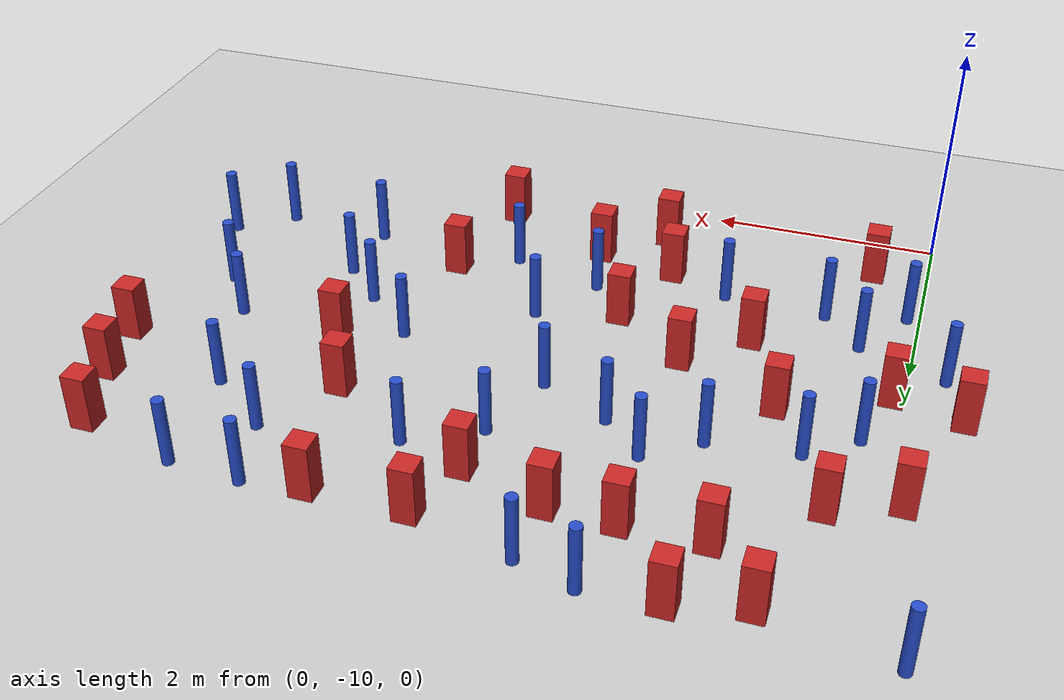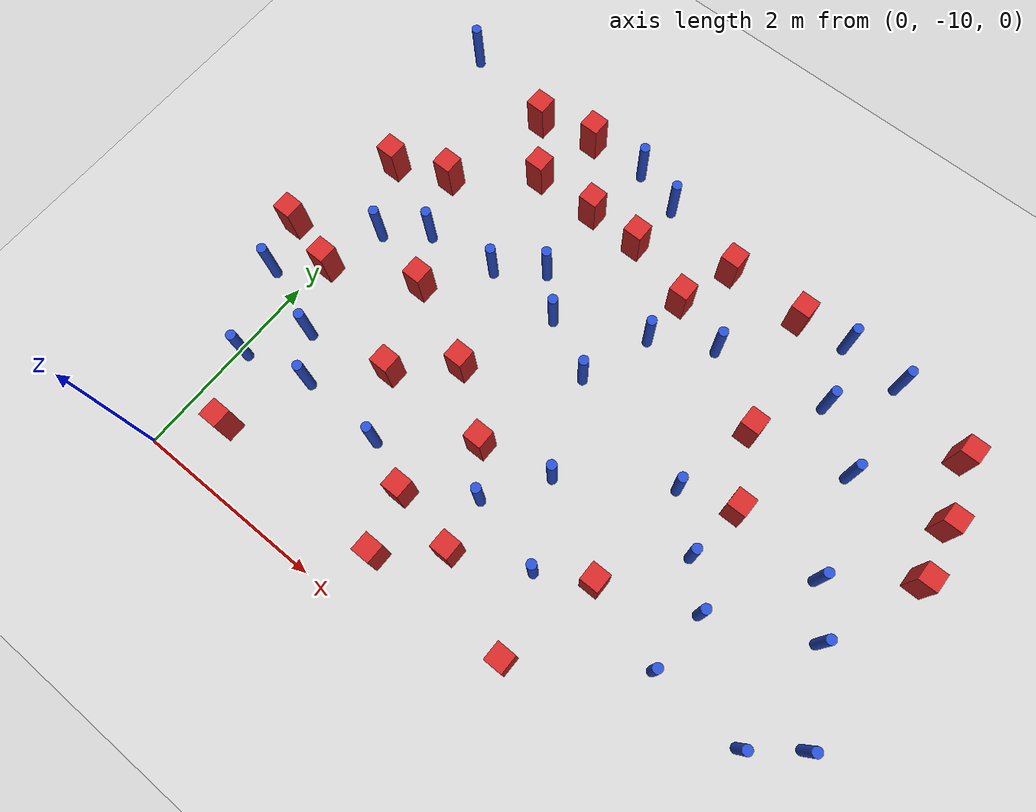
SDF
<sdf version="1.6">
 <world name="default">
  <model name="ground_plane">
   <static>1</static>
   <link name="link">
    <collision name="collision">
     <geometry><plane><normal>0 0 1</normal><size>100 100</size></plane></geometry>
     <surface><friction><ode><mu>100</mu><mu2>50</mu2></ode></friction></surface>
    </collision>
    <visual name="visual">
     <cast_shadows>0</cast_shadows>
     <geometry><plane><normal>0 0 1</normal><size>100 100</size></plane></geometry>
     <material>
      <ambient>1.0 1.0 1.0 1.0</ambient>
      <diffuse>0.8 0.8 0.8 1.0</diffuse>
      <specular>0.01 0.01 0.01 1.000000</specular>
     </material>
    </visual>
   </link>
  </model>
  <model name="pole_obstacle1">
   <static>true</static>
   <pose>1.91231191744 -4.81511615944 7.38925637345e-09 -8.47170692799e-08 1.24976765033e-08 -1.74513093018e-07</pose>
   <link name="link">
    <pose>0 0 0.3 0 -0 0</pose>
    <inertial>
     <mass>1</mass>
     <inertia><ixx>0.145833</ixx><ixy>0</ixy><ixz>0</ixz><iyy>0.145833</iyy><iyz>0</iyz><izz>0.125</izz></inertia>
    </inertial>
    <collision name="collision">
     <geometry><cylinder><radius>0.05</radius><length>.6</length></cylinder></geometry>
    </collision>
    <visual name="visual">
     <geometry><cylinder><radius>0.05</radius><length>.6</length></cylinder></geometry>
     <material>
      <script><name>Gazebo/Blue</name><uri>file://media/materials/scripts/gazebo.material</uri></script>
     </material>
    </visual>
   </link>
  </model>
  <model name="square_post_obstacle3">
   <static>true</static>
   <pose>4.73159785366 -7.09271459346 1.91545236811e-07 -7.35059704564e-06 1.12565212e-07 2.39332434364e-05</pose>
   <link name="link">
    <pose>0 0 0.25 0 -0 0</pose>
    <inertial>
     <mass>100</mass>
     <inertia>
      <ixx>0.166667</ixx>
      <ixy>0</ixy>
      <ixz>0</ixz>
      <iyy>0.166667</iyy>
      <iyz>0</iyz>
      <izz>0.166667</izz>
     </inertia>
    </inertial>
    <collision name="collision"><geometry><box><size>.2 .2 .5</size></box></geometry></collision>
    <visual name="visual">
     <geometry><box><size>.2 .2 .5</size></box></geometry>
     <material>
      <script><name>Gazebo/Red</name><uri>file://media/materials/scripts/gazebo.material</uri></script>
     </material>
    </visual>
   </link>
  </model>
  <model name="square_post_obstacle6">
   <static>true</static>
   <pose>-0.13739127547 -6.34683492645 1.91545236811e-07 -7.35059704564e-06 1.12565212e-07 2.39332434364e-05</pose>
   <link name="link">
    <pose>0 0 0.25 0 -0 0</pose>
    <inertial>
     <mass>100</mass>
     <inertia>
      <ixx>0.166667</ixx>
      <ixy>0</ixy>
      <ixz>0</ixz>
      <iyy>0.166667</iyy>
      <iyz>0</iyz>
      <izz>0.166667</izz>
     </inertia>
    </inertial>
    <collision name="collision"><geometry><box><size>.2 .2 .5</size></box></geometry></collision>
    <visual name="visual">
     <geometry><box><size>.2 .2 .5</size></box></geometry>
     <material>
      <script><name>Gazebo/Red</name><uri>file://media/materials/scripts/gazebo.material</uri></script>
     </material>
    </visual>
   </link>
  </model>
  <model name="pole_obstacle9">
   <static>true</static>
   <pose>6.38871355825 -8.41698231804 7.38925637345e-09 -8.471706928e-08 1.24976765081e-08 -1.74513093015e-07</pose>
   <link name="link">
    <pose>0 0 0.3 0 -0 0</pose>
    <inertial>
     <mass>1</mass>
     <inertia><ixx>0.145833</ixx><ixy>0</ixy><ixz>0</ixz><iyy>0.145833</iyy><iyz>0</iyz><izz>0.125</izz></inertia>
    </inertial>
    <collision name="collision">
     <geometry><cylinder><radius>0.05</radius><length>.6</length></cylinder></geometry>
    </collision>
    <visual name="visual">
     <geometry><cylinder><radius>0.05</radius><length>.6</length></cylinder></geometry>
     <material>
      <script><name>Gazebo/Blue</name><uri>file://media/materials/scripts/gazebo.material</uri></script>
     </material>
    </visual>
   </link>
  </model>
  <model name="square_post_obstacle17">
   <static>true</static>
   <pose>0.711872368163 -4.99060453869 1.91545236811e-07 -7.35059704564e-06 1.12565212e-07 2.39332434364e-05</pose>
   <link name="link">
    <pose>0 0 0.25 0 -0 0</pose>
    <inertial>
     <mass>100</mass>
     <inertia>
      <ixx>0.166667</ixx>
      <ixy>0</ixy>
      <ixz>0</ixz>
      <iyy>0.166667</iyy>
      <iyz>0</iyz>
      <izz>0.166667</izz>
     </inertia>
    </inertial>
    <collision name="collision"><geometry><box><size>.2 .2 .5</size></box></geometry></collision>
    <visual name="visual">
     <geometry><box><size>.2 .2 .5</size></box></geometry>
     <material>
      <script><name>Gazebo/Red</name><uri>file://media/materials/scripts/gazebo.material</uri></script>
     </material>
    </visual>
   </link>
  </model>
  <model name="pole_obstacle23">
   <static>true</static>
   <pose>0.671998898837 -6.71637909168 7.38925637345e-09 -8.471706928e-08 1.24976765086e-08 -1.74513093015e-07</pose>
   <link name="link">
    <pose>0 0 0.3 0 -0 0</pose>
    <inertial>
     <mass>1</mass>
     <inertia><ixx>0.145833</ixx><ixy>0</ixy><ixz>0</ixz><iyy>0.145833</iyy><iyz>0</iyz><izz>0.125</izz></inertia>
    </inertial>
    <collision name="collision">
     <geometry><cylinder><radius>0.05</radius><length>.6</length></cylinder></geometry>
    </collision>
    <visual name="visual">
     <geometry><cylinder><radius>0.05</radius><length>.6</length></cylinder></geometry>
     <material>
      <script><name>Gazebo/Blue</name><uri>file://media/materials/scripts/gazebo.material</uri></script>
     </material>
    </visual>
   </link>
  </model>
  <model name="pole_obstacle34">
   <static>true</static>
   <pose>4.98643808764 -8.70462757698 7.38925637345e-09 -8.471706928e-08 1.24976765081e-08 -1.74513093015e-07</pose>
   <link name="link">
    <pose>0 0 0.3 0 -0 0</pose>
    <inertial>
     <mass>1</mass>
     <inertia><ixx>0.145833</ixx><ixy>0</ixy><ixz>0</ixz><iyy>0.145833</iyy><iyz>0</iyz><izz>0.125</izz></inertia>
    </inertial>
    <collision name="collision">
     <geometry><cylinder><radius>0.05</radius><length>.6</length></cylinder></geometry>
    </collision>
    <visual name="visual">
     <geometry><cylinder><radius>0.05</radius><length>.6</length></cylinder></geometry>
     <material>
      <script><name>Gazebo/Blue</name><uri>file://media/materials/scripts/gazebo.material</uri></script>
     </material>
    </visual>
   </link>
  </model>
  <model name="pole_obstacle38">
   <static>true</static>
   <pose>0.103713472248 -8.81481987806 7.38925637345e-09 -8.47170692797e-08 1.24976764742e-08 -1.74513093035e-07</pose>
   <link name="link">
    <pose>0 0 0.3 0 -0 0</pose>
    <inertial>
     <mass>1</mass>
     <inertia><ixx>0.145833</ixx><ixy>0</ixy><ixz>0</ixz><iyy>0.145833</iyy><iyz>0</iyz><izz>0.125</izz></inertia>
    </inertial>
    <collision name="collision">
     <geometry><cylinder><radius>0.05</radius><length>.6</length></cylinder></geometry>
    </collision>
    <visual name="visual">
     <geometry><cylinder><radius>0.05</radius><length>.6</length></cylinder></geometry>
     <material>
      <script><name>Gazebo/Blue</name><uri>file://media/materials/scripts/gazebo.material</uri></script>
     </material>
    </visual>
   </link>
  </model>
  <model name="pole_obstacle39">
   <static>true</static>
   <pose>4.65771774211 -7.69838836491 7.38925637345e-09 -8.47170692796e-08 1.24976764786e-08 -1.74513093032e-07</pose>
   <link name="link">
    <pose>0 0 0.3 0 -0 0</pose>
    <inertial>
     <mass>1</mass>
     <inertia><ixx>0.145833</ixx><ixy>0</ixy><ixz>0</ixz><iyy>0.145833</iyy><iyz>0</iyz><izz>0.125</izz></inertia>
    </inertial>
    <collision name="collision">
     <geometry><cylinder><radius>0.05</radius><length>.6</length></cylinder></geometry>
    </collision>
    <visual name="visual">
     <geometry><cylinder><radius>0.05</radius><length>.6</length></cylinder></geometry>
     <material>
      <script><name>Gazebo/Blue</name><uri>file://media/materials/scripts/gazebo.material</uri></script>
     </material>
    </visual>
   </link>
  </model>
  <model name="pole_obstacle57">
   <static>true</static>
   <pose>2.82291841367 -6.95816381915 7.38925637345e-09 -8.47170692798e-08 1.24976765033e-08 -1.74513093019e-07</pose>
   <link name="link">
    <pose>0 0 0.3 0 -0 0</pose>
    <inertial>
     <mass>1</mass>
     <inertia><ixx>0.145833</ixx><ixy>0</ixy><ixz>0</ixz><iyy>0.145833</iyy><iyz>0</iyz><izz>0.125</izz></inertia>
    </inertial>
    <collision name="collision">
     <geometry><cylinder><radius>0.05</radius><length>.6</length></cylinder></geometry>
    </collision>
    <visual name="visual">
     <geometry><cylinder><radius>0.05</radius><length>.6</length></cylinder></geometry>
     <material>
      <script><name>Gazebo/Blue</name><uri>file://media/materials/scripts/gazebo.material</uri></script>
     </material>
    </visual>
   </link>
  </model>
  <model name="square_post_obstacle63">
   <static>true</static>
   <pose>1.84589633385 -7.60477948158 1.91545236811e-07 -7.35059704564e-06 1.12565212e-07 2.39332434364e-05</pose>
   <link name="link">
    <pose>0 0 0.25 0 -0 0</pose>
    <inertial>
     <mass>100</mass>
     <inertia>
      <ixx>0.166667</ixx>
      <ixy>0</ixy>
      <ixz>0</ixz>
      <iyy>0.166667</iyy>
      <iyz>0</iyz>
      <izz>0.166667</izz>
     </inertia>
    </inertial>
    <collision name="collision"><geometry><box><size>.2 .2 .5</size></box></geometry></collision>
    <visual name="visual">
     <geometry><box><size>.2 .2 .5</size></box></geometry>
     <material>
      <script><name>Gazebo/Red</name><uri>file://media/materials/scripts/gazebo.material</uri></script>
     </material>
    </visual>
   </link>
  </model>
  <model name="pole_obstacle69">
   <static>true</static>
   <pose>0.793207313944 -8.64598180785 7.38925637345e-09 -8.47170692797e-08 1.249767648e-08 -1.74513093032e-07</pose>
   <link name="link">
    <pose>0 0 0.3 0 -0 0</pose>
    <inertial>
     <mass>1</mass>
     <inertia><ixx>0.145833</ixx><ixy>0</ixy><ixz>0</ixz><iyy>0.145833</iyy><iyz>0</iyz><izz>0.125</izz></inertia>
    </inertial>
    <collision name="collision">
     <geometry><cylinder><radius>0.05</radius><length>.6</length></cylinder></geometry>
    </collision>
    <visual name="visual">
     <geometry><cylinder><radius>0.05</radius><length>.6</length></cylinder></geometry>
     <material>
      <script><name>Gazebo/Blue</name><uri>file://media/materials/scripts/gazebo.material</uri></script>
     </material>
    </visual>
   </link>
  </model>
  <model name="pole_obstacle76">
   <static>true</static>
   <pose>0.265700854076 -7.02535384973 7.38925637345e-09 -8.47170692799e-08 1.24976765101e-08 -1.74513093014e-07</pose>
   <link name="link">
    <pose>0 0 0.3 0 -0 0</pose>
    <inertial>
     <mass>1</mass>
     <inertia><ixx>0.145833</ixx><ixy>0</ixy><ixz>0</ixz><iyy>0.145833</iyy><iyz>0</iyz><izz>0.125</izz></inertia>
    </inertial>
    <collision name="collision">
     <geometry><cylinder><radius>0.05</radius><length>.6</length></cylinder></geometry>
    </collision>
    <visual name="visual">
     <geometry><cylinder><radius>0.05</radius><length>.6</length></cylinder></geometry>
     <material>
      <script><name>Gazebo/Blue</name><uri>file://media/materials/scripts/gazebo.material</uri></script>
     </material>
    </visual>
   </link>
  </model>
  <model name="pole_obstacle77">
   <static>true</static>
   <pose>4.62803291977 -5.10915425561 7.38925637345e-09 -8.47170692796e-08 1.24976764786e-08 -1.74513093032e-07</pose>
   <link name="link">
    <pose>0 0 0.3 0 -0 0</pose>
    <inertial>
     <mass>1</mass>
     <inertia><ixx>0.145833</ixx><ixy>0</ixy><ixz>0</ixz><iyy>0.145833</iyy><iyz>0</iyz><izz>0.125</izz></inertia>
    </inertial>
    <collision name="collision">
     <geometry><cylinder><radius>0.05</radius><length>.6</length></cylinder></geometry>
    </collision>
    <visual name="visual">
     <geometry><cylinder><radius>0.05</radius><length>.6</length></cylinder></geometry>
     <material>
      <script><name>Gazebo/Blue</name><uri>file://media/materials/scripts/gazebo.material</uri></script>
     </material>
    </visual>
   </link>
  </model>
  <model name="square_post_obstacle77">
   <static>true</static>
   <pose>0.101490766564 -7.62791156198 1.91545236811e-07 -7.35059704564e-06 1.12565212e-07 2.39332434364e-05</pose>
   <link name="link">
    <pose>0 0 0.25 0 -0 0</pose>
    <inertial>
     <mass>100</mass>
     <inertia>
      <ixx>0.166667</ixx>
      <ixy>0</ixy>
      <ixz>0</ixz>
      <iyy>0.166667</iyy>
      <iyz>0</iyz>
      <izz>0.166667</izz>
     </inertia>
    </inertial>
    <collision name="collision"><geometry><box><size>.2 .2 .5</size></box></geometry></collision>
    <visual name="visual">
     <geometry><box><size>.2 .2 .5</size></box></geometry>
     <material>
      <script><name>Gazebo/Red</name><uri>file://media/materials/scripts/gazebo.material</uri></script>
     </material>
    </visual>
   </link>
  </model>
  <model name="pole_obstacle80">
   <static>true</static>
   <pose>3.07593350707 -6.24728695475 7.38925637345e-09 -8.47170692798e-08 1.24976765033e-08 -1.74513093019e-07</pose>
   <link name="link">
    <pose>0 0 0.3 0 -0 0</pose>
    <inertial>
     <mass>1</mass>
     <inertia><ixx>0.145833</ixx><ixy>0</ixy><ixz>0</ixz><iyy>0.145833</iyy><iyz>0</iyz><izz>0.125</izz></inertia>
    </inertial>
    <collision name="collision">
     <geometry><cylinder><radius>0.05</radius><length>.6</length></cylinder></geometry>
    </collision>
    <visual name="visual">
     <geometry><cylinder><radius>0.05</radius><length>.6</length></cylinder></geometry>
     <material>
      <script><name>Gazebo/Blue</name><uri>file://media/materials/scripts/gazebo.material</uri></script>
     </material>
    </visual>
   </link>
  </model>
  <model name="pole_obstacle84">
   <static>true</static>
   <pose>-0.316353055439 -4.78345484093 7.38925637345e-09 -8.471706928e-08 1.24976765079e-08 -1.74513093015e-07</pose>
   <link name="link">
    <pose>0 0 0.3 0 -0 0</pose>
    <inertial>
     <mass>1</mass>
     <inertia><ixx>0.145833</ixx><ixy>0</ixy><ixz>0</ixz><iyy>0.145833</iyy><iyz>0</iyz><izz>0.125</izz></inertia>
    </inertial>
    <collision name="collision">
     <geometry><cylinder><radius>0.05</radius><length>.6</length></cylinder></geometry>
    </collision>
    <visual name="visual">
     <geometry><cylinder><radius>0.05</radius><length>.6</length></cylinder></geometry>
     <material>
      <script><name>Gazebo/Blue</name><uri>file://media/materials/scripts/gazebo.material</uri></script>
     </material>
    </visual>
   </link>
  </model>
  <model name="pole_obstacle100">
   <static>true</static>
   <pose>2.81859600376 -8.49059267902 7.38925637345e-09 -8.47170692793e-08 1.24976764408e-08 -1.74513093041e-07</pose>
   <link name="link">
    <pose>0 0 0.3 0 -0 0</pose>
    <inertial>
     <mass>1</mass>
     <inertia><ixx>0.145833</ixx><ixy>0</ixy><ixz>0</ixz><iyy>0.145833</iyy><iyz>0</iyz><izz>0.125</izz></inertia>
    </inertial>
    <collision name="collision">
     <geometry><cylinder><radius>0.05</radius><length>.6</length></cylinder></geometry>
    </collision>
    <visual name="visual">
     <geometry><cylinder><radius>0.05</radius><length>.6</length></cylinder></geometry>
     <material>
      <script><name>Gazebo/Blue</name><uri>file://media/materials/scripts/gazebo.material</uri></script>
     </material>
    </visual>
   </link>
  </model>
  <model name="square_post_obstacle88">
   <static>true</static>
   <pose>0.474784953061 -9.44375856852 1.91545236811e-07 -7.35059704564e-06 1.12565212e-07 2.39332434364e-05</pose>
   <link name="link">
    <pose>0 0 0.25 0 -0 0</pose>
    <inertial>
     <mass>100</mass>
     <inertia>
      <ixx>0.166667</ixx>
      <ixy>0</ixy>
      <ixz>0</ixz>
      <iyy>0.166667</iyy>
      <iyz>0</iyz>
      <izz>0.166667</izz>
     </inertia>
    </inertial>
    <collision name="collision"><geometry><box><size>.2 .2 .5</size></box></geometry></collision>
    <visual name="visual">
     <geometry><box><size>.2 .2 .5</size></box></geometry>
     <material>
      <script><name>Gazebo/Red</name><uri>file://media/materials/scripts/gazebo.material</uri></script>
     </material>
    </visual>
   </link>
  </model>
  <model name="square_post_obstacle89">
   <static>true</static>
   <pose>0.413171562983 -6.11546463024 1.91545236811e-07 -7.35059704564e-06 1.12565212e-07 2.39332434364e-05</pose>
   <link name="link">
    <pose>0 0 0.25 0 -0 0</pose>
    <inertial>
     <mass>100</mass>
     <inertia>
      <ixx>0.166667</ixx>
      <ixy>0</ixy>
      <ixz>0</ixz>
      <iyy>0.166667</iyy>
      <iyz>0</iyz>
      <izz>0.166667</izz>
     </inertia>
    </inertial>
    <collision name="collision"><geometry><box><size>.2 .2 .5</size></box></geometry></collision>
    <visual name="visual">
     <geometry><box><size>.2 .2 .5</size></box></geometry>
     <material>
      <script><name>Gazebo/Red</name><uri>file://media/materials/scripts/gazebo.material</uri></script>
     </material>
    </visual>
   </link>
  </model>
  <model name="pole_obstacle103">
   <static>true</static>
   <pose>5.66362499683 -7.15662347223 7.38925637345e-09 -8.47170692796e-08 1.24976764786e-08 -1.74513093032e-07</pose>
   <link name="link">
    <pose>0 0 0.3 0 -0 0</pose>
    <inertial>
     <mass>1</mass>
     <inertia><ixx>0.145833</ixx><ixy>0</ixy><ixz>0</ixz><iyy>0.145833</iyy><iyz>0</iyz><izz>0.125</izz></inertia>
    </inertial>
    <collision name="collision">
     <geometry><cylinder><radius>0.05</radius><length>.6</length></cylinder></geometry>
    </collision>
    <visual name="visual">
     <geometry><cylinder><radius>0.05</radius><length>.6</length></cylinder></geometry>
     <material>
      <script><name>Gazebo/Blue</name><uri>file://media/materials/scripts/gazebo.material</uri></script>
     </material>
    </visual>
   </link>
  </model>
  <model name="pole_obstacle113">
   <static>true</static>
   <pose>4.18824815081 -7.26837887892 7.38925637345e-09 -8.47170692796e-08 1.24976764786e-08 -1.74513093032e-07</pose>
   <link name="link">
    <pose>0 0 0.3 0 -0 0</pose>
    <inertial>
     <mass>1</mass>
     <inertia><ixx>0.145833</ixx><ixy>0</ixy><ixz>0</ixz><iyy>0.145833</iyy><iyz>0</iyz><izz>0.125</izz></inertia>
    </inertial>
    <collision name="collision">
     <geometry><cylinder><radius>0.05</radius><length>.6</length></cylinder></geometry>
    </collision>
    <visual name="visual">
     <geometry><cylinder><radius>0.05</radius><length>.6</length></cylinder></geometry>
     <material>
      <script><name>Gazebo/Blue</name><uri>file://media/materials/scripts/gazebo.material</uri></script>
     </material>
    </visual>
   </link>
  </model>
  <model name="pole_obstacle115">
   <static>true</static>
   <pose>-0.298009833933 -7.99677674512 7.38925637345e-09 -8.471706928e-08 1.24976765066e-08 -1.74513093018e-07</pose>
   <link name="link">
    <pose>0 0 0.3 0 -0 0</pose>
    <inertial>
     <mass>1</mass>
     <inertia><ixx>0.145833</ixx><ixy>0</ixy><ixz>0</ixz><iyy>0.145833</iyy><iyz>0</iyz><izz>0.125</izz></inertia>
    </inertial>
    <collision name="collision">
     <geometry><cylinder><radius>0.05</radius><length>.6</length></cylinder></geometry>
    </collision>
    <visual name="visual">
     <geometry><cylinder><radius>0.05</radius><length>.6</length></cylinder></geometry>
     <material>
      <script><name>Gazebo/Blue</name><uri>file://media/materials/scripts/gazebo.material</uri></script>
     </material>
    </visual>
   </link>
  </model>
  <model name="pole_obstacle116">
   <static>true</static>
   <pose>5.36185492414 -6.17863968368 7.38925637345e-09 -8.47170692796e-08 1.24976764786e-08 -1.74513093032e-07</pose>
   <link name="link">
    <pose>0 0 0.3 0 -0 0</pose>
    <inertial>
     <mass>1</mass>
     <inertia><ixx>0.145833</ixx><ixy>0</ixy><ixz>0</ixz><iyy>0.145833</iyy><iyz>0</iyz><izz>0.125</izz></inertia>
    </inertial>
    <collision name="collision">
     <geometry><cylinder><radius>0.05</radius><length>.6</length></cylinder></geometry>
    </collision>
    <visual name="visual">
     <geometry><cylinder><radius>0.05</radius><length>.6</length></cylinder></geometry>
     <material>
      <script><name>Gazebo/Blue</name><uri>file://media/materials/scripts/gazebo.material</uri></script>
     </material>
    </visual>
   </link>
  </model>
  <model name="square_post_obstacle112">
   <static>true</static>
   <pose>1.12959561512 -5.52416616561 1.91545236811e-07 -7.35059704564e-06 1.12565212e-07 2.39332434364e-05</pose>
   <link name="link">
    <pose>0 0 0.25 0 -0 0</pose>
    <inertial>
     <mass>100</mass>
     <inertia>
      <ixx>0.166667</ixx>
      <ixy>0</ixy>
      <ixz>0</ixz>
      <iyy>0.166667</iyy>
      <iyz>0</iyz>
      <izz>0.166667</izz>
     </inertia>
    </inertial>
    <collision name="collision"><geometry><box><size>.2 .2 .5</size></box></geometry></collision>
    <visual name="visual">
     <geometry><box><size>.2 .2 .5</size></box></geometry>
     <material>
      <script><name>Gazebo/Red</name><uri>file://media/materials/scripts/gazebo.material</uri></script>
     </material>
    </visual>
   </link>
  </model>
  <model name="pole_obstacle121">
   <static>true</static>
   <pose>3.21061615714 -7.90962398627 7.38925637345e-09 -8.47170692798e-08 1.24976765033e-08 -1.74513093019e-07</pose>
   <link name="link">
    <pose>0 0 0.3 0 -0 0</pose>
    <inertial>
     <mass>1</mass>
     <inertia><ixx>0.145833</ixx><ixy>0</ixy><ixz>0</ixz><iyy>0.145833</iyy><iyz>0</iyz><izz>0.125</izz></inertia>
    </inertial>
    <collision name="collision">
     <geometry><cylinder><radius>0.05</radius><length>.6</length></cylinder></geometry>
    </collision>
    <visual name="visual">
     <geometry><cylinder><radius>0.05</radius><length>.6</length></cylinder></geometry>
     <material>
      <script><name>Gazebo/Blue</name><uri>file://media/materials/scripts/gazebo.material</uri></script>
     </material>
    </visual>
   </link>
  </model>
  <model name="pole_obstacle125">
   <static>true</static>
   <pose>5.24991008408 -5.1488739993 7.38925637345e-09 -8.47170692796e-08 1.24976764786e-08 -1.74513093032e-07</pose>
   <link name="link">
    <pose>0 0 0.3 0 -0 0</pose>
    <inertial>
     <mass>1</mass>
     <inertia><ixx>0.145833</ixx><ixy>0</ixy><ixz>0</ixz><iyy>0.145833</iyy><iyz>0</iyz><izz>0.125</izz></inertia>
    </inertial>
    <collision name="collision">
     <geometry><cylinder><radius>0.05</radius><length>.6</length></cylinder></geometry>
    </collision>
    <visual name="visual">
     <geometry><cylinder><radius>0.05</radius><length>.6</length></cylinder></geometry>
     <material>
      <script><name>Gazebo/Blue</name><uri>file://media/materials/scripts/gazebo.material</uri></script>
     </material>
    </visual>
   </link>
  </model>
  <model name="pole_obstacle135">
   <static>true</static>
   <pose>1.41796245469 -6.62808417641 7.38925637345e-09 -8.47170692799e-08 1.24976765033e-08 -1.74513093018e-07</pose>
   <link name="link">
    <pose>0 0 0.3 0 -0 0</pose>
    <inertial>
     <mass>1</mass>
     <inertia><ixx>0.145833</ixx><ixy>0</ixy><ixz>0</ixz><iyy>0.145833</iyy><iyz>0</iyz><izz>0.125</izz></inertia>
    </inertial>
    <collision name="collision">
     <geometry><cylinder><radius>0.05</radius><length>.6</length></cylinder></geometry>
    </collision>
    <visual name="visual">
     <geometry><cylinder><radius>0.05</radius><length>.6</length></cylinder></geometry>
     <material>
      <script><name>Gazebo/Blue</name><uri>file://media/materials/scripts/gazebo.material</uri></script>
     </material>
    </visual>
   </link>
  </model>
  <model name="square_post_obstacle123">
   <static>true</static>
   <pose>2.3962631424 -9.47699371992 1.91545236811e-07 -7.35059704564e-06 1.12565212e-07 2.39332434364e-05</pose>
   <link name="link">
    <pose>0 0 0.25 0 -0 0</pose>
    <inertial>
     <mass>100</mass>
     <inertia>
      <ixx>0.166667</ixx>
      <ixy>0</ixy>
      <ixz>0</ixz>
      <iyy>0.166667</iyy>
      <iyz>0</iyz>
      <izz>0.166667</izz>
     </inertia>
    </inertial>
    <collision name="collision"><geometry><box><size>.2 .2 .5</size></box></geometry></collision>
    <visual name="visual">
     <geometry><box><size>.2 .2 .5</size></box></geometry>
     <material>
      <script><name>Gazebo/Red</name><uri>file://media/materials/scripts/gazebo.material</uri></script>
     </material>
    </visual>
   </link>
  </model>
  <model name="square_post_obstacle127">
   <static>true</static>
   <pose>2.91376305143 -9.02884189772 1.91545236811e-07 -7.35059704564e-06 1.12565212e-07 2.39332434364e-05</pose>
   <link name="link">
    <pose>0 0 0.25 0 -0 0</pose>
    <inertial>
     <mass>100</mass>
     <inertia>
      <ixx>0.166667</ixx>
      <ixy>0</ixy>
      <ixz>0</ixz>
      <iyy>0.166667</iyy>
      <iyz>0</iyz>
      <izz>0.166667</izz>
     </inertia>
    </inertial>
    <collision name="collision"><geometry><box><size>.2 .2 .5</size></box></geometry></collision>
    <visual name="visual">
     <geometry><box><size>.2 .2 .5</size></box></geometry>
     <material>
      <script><name>Gazebo/Red</name><uri>file://media/materials/scripts/gazebo.material</uri></script>
     </material>
    </visual>
   </link>
  </model>
  <model name="square_post_obstacle128">
   <static>true</static>
   <pose>6.09529331212 -5.37648003618 1.91545236811e-07 -7.35059704564e-06 1.12565212e-07 2.39332434364e-05</pose>
   <link name="link">
    <pose>0 0 0.25 0 -0 0</pose>
    <inertial>
     <mass>100</mass>
     <inertia>
      <ixx>0.166667</ixx>
      <ixy>0</ixy>
      <ixz>0</ixz>
      <iyy>0.166667</iyy>
      <iyz>0</iyz>
      <izz>0.166667</izz>
     </inertia>
    </inertial>
    <collision name="collision"><geometry><box><size>.2 .2 .5</size></box></geometry></collision>
    <visual name="visual">
     <geometry><box><size>.2 .2 .5</size></box></geometry>
     <material>
      <script><name>Gazebo/Red</name><uri>file://media/materials/scripts/gazebo.material</uri></script>
     </material>
    </visual>
   </link>
  </model>
  <model name="pole_obstacle149">
   <static>true</static>
   <pose>2.21756989426 -6.66043922674 7.38925637345e-09 -8.47170692798e-08 1.24976765033e-08 -1.74513093019e-07</pose>
   <link name="link">
    <pose>0 0 0.3 0 -0 0</pose>
    <inertial>
     <mass>1</mass>
     <inertia><ixx>0.145833</ixx><ixy>0</ixy><ixz>0</ixz><iyy>0.145833</iyy><iyz>0</iyz><izz>0.125</izz></inertia>
    </inertial>
    <collision name="collision">
     <geometry><cylinder><radius>0.05</radius><length>.6</length></cylinder></geometry>
    </collision>
    <visual name="visual">
     <geometry><cylinder><radius>0.05</radius><length>.6</length></cylinder></geometry>
     <material>
      <script><name>Gazebo/Blue</name><uri>file://media/materials/scripts/gazebo.material</uri></script>
     </material>
    </visual>
   </link>
  </model>
  <model name="square_post_obstacle143">
   <static>true</static>
   <pose>4.10590881892 -5.16674720726 1.91545236811e-07 -7.35059704564e-06 1.12565212e-07 2.39332434364e-05</pose>
   <link name="link">
    <pose>0 0 0.25 0 -0 0</pose>
    <inertial>
     <mass>100</mass>
     <inertia>
      <ixx>0.166667</ixx>
      <ixy>0</ixy>
      <ixz>0</ixz>
      <iyy>0.166667</iyy>
      <iyz>0</iyz>
      <izz>0.166667</izz>
     </inertia>
    </inertial>
    <collision name="collision"><geometry><box><size>.2 .2 .5</size></box></geometry></collision>
    <visual name="visual">
     <geometry><box><size>.2 .2 .5</size></box></geometry>
     <material>
      <script><name>Gazebo/Red</name><uri>file://media/materials/scripts/gazebo.material</uri></script>
     </material>
    </visual>
   </link>
  </model>
  <model name="pole_obstacle159">
   <static>true</static>
   <pose>5.93702845385 -8.75833402639 7.38925637345e-09 -8.471706928e-08 1.24976765081e-08 -1.74513093015e-07</pose>
   <link name="link">
    <pose>0 0 0.3 0 -0 0</pose>
    <inertial>
     <mass>1</mass>
     <inertia><ixx>0.145833</ixx><ixy>0</ixy><ixz>0</ixz><iyy>0.145833</iyy><iyz>0</iyz><izz>0.125</izz></inertia>
    </inertial>
    <collision name="collision">
     <geometry><cylinder><radius>0.05</radius><length>.6</length></cylinder></geometry>
    </collision>
    <visual name="visual">
     <geometry><cylinder><radius>0.05</radius><length>.6</length></cylinder></geometry>
     <material>
      <script><name>Gazebo/Blue</name><uri>file://media/materials/scripts/gazebo.material</uri></script>
     </material>
    </visual>
   </link>
  </model>
  <model name="square_post_obstacle154">
   <static>true</static>
   <pose>2.36366186434 -5.5180276058 1.91545236811e-07 -7.35059704564e-06 1.12565212e-07 2.39332434364e-05</pose>
   <link name="link">
    <pose>0 0 0.25 0 -0 0</pose>
    <inertial>
     <mass>100</mass>
     <inertia>
      <ixx>0.166667</ixx>
      <ixy>0</ixy>
      <ixz>0</ixz>
      <iyy>0.166667</iyy>
      <iyz>0</iyz>
      <izz>0.166667</izz>
     </inertia>
    </inertial>
    <collision name="collision"><geometry><box><size>.2 .2 .5</size></box></geometry></collision>
    <visual name="visual">
     <geometry><box><size>.2 .2 .5</size></box></geometry>
     <material>
      <script><name>Gazebo/Red</name><uri>file://media/materials/scripts/gazebo.material</uri></script>
     </material>
    </visual>
   </link>
  </model>
  <model name="square_post_obstacle164">
   <static>true</static>
   <pose>1.8015516509 -5.50958164869 1.91545236811e-07 -7.35059704564e-06 1.12565212e-07 2.39332434364e-05</pose>
   <link name="link">
    <pose>0 0 0.25 0 -0 0</pose>
    <inertial>
     <mass>100</mass>
     <inertia>
      <ixx>0.166667</ixx>
      <ixy>0</ixy>
      <ixz>0</ixz>
      <iyy>0.166667</iyy>
      <iyz>0</iyz>
      <izz>0.166667</izz>
     </inertia>
    </inertial>
    <collision name="collision"><geometry><box><size>.2 .2 .5</size></box></geometry></collision>
    <visual name="visual">
     <geometry><box><size>.2 .2 .5</size></box></geometry>
     <material>
      <script><name>Gazebo/Red</name><uri>file://media/materials/scripts/gazebo.material</uri></script>
     </material>
    </visual>
   </link>
  </model>
  <model name="pole_obstacle177">
   <static>true</static>
   <pose>0.447715959135 -8.26668606068 7.38925637345e-09 -8.47170692796e-08 1.24976764724e-08 -1.74513093036e-07</pose>
   <link name="link">
    <pose>0 0 0.3 0 -0 0</pose>
    <inertial>
     <mass>1</mass>
     <inertia><ixx>0.145833</ixx><ixy>0</ixy><ixz>0</ixz><iyy>0.145833</iyy><iyz>0</iyz><izz>0.125</izz></inertia>
    </inertial>
    <collision name="collision">
     <geometry><cylinder><radius>0.05</radius><length>.6</length></cylinder></geometry>
    </collision>
    <visual name="visual">
     <geometry><cylinder><radius>0.05</radius><length>.6</length></cylinder></geometry>
     <material>
      <script><name>Gazebo/Blue</name><uri>file://media/materials/scripts/gazebo.material</uri></script>
     </material>
    </visual>
   </link>
  </model>
  <model name="square_post_obstacle166">
   <static>true</static>
   <pose>-0.485140744775 -7.47977139413 1.91545236811e-07 -7.35059704564e-06 1.12565212e-07 2.39332434364e-05</pose>
   <link name="link">
    <pose>0 0 0.25 0 -0 0</pose>
    <inertial>
     <mass>100</mass>
     <inertia>
      <ixx>0.166667</ixx>
      <ixy>0</ixy>
      <ixz>0</ixz>
      <iyy>0.166667</iyy>
      <iyz>0</iyz>
      <izz>0.166667</izz>
     </inertia>
    </inertial>
    <collision name="collision"><geometry><box><size>.2 .2 .5</size></box></geometry></collision>
    <visual name="visual">
     <geometry><box><size>.2 .2 .5</size></box></geometry>
     <material>
      <script><name>Gazebo/Red</name><uri>file://media/materials/scripts/gazebo.material</uri></script>
     </material>
    </visual>
   </link>
  </model>
  <model name="square_post_obstacle168">
   <static>true</static>
   <pose>1.33474231275 -8.07630329045 1.91545236811e-07 -7.35059704564e-06 1.12565212e-07 2.39332434364e-05</pose>
   <link name="link">
    <pose>0 0 0.25 0 -0 0</pose>
    <inertial>
     <mass>100</mass>
     <inertia>
      <ixx>0.166667</ixx>
      <ixy>0</ixy>
      <ixz>0</ixz>
      <iyy>0.166667</iyy>
      <iyz>0</iyz>
      <izz>0.166667</izz>
     </inertia>
    </inertial>
    <collision name="collision"><geometry><box><size>.2 .2 .5</size></box></geometry></collision>
    <visual name="visual">
     <geometry><box><size>.2 .2 .5</size></box></geometry>
     <material>
      <script><name>Gazebo/Red</name><uri>file://media/materials/scripts/gazebo.material</uri></script>
     </material>
    </visual>
   </link>
  </model>
  <model name="square_post_obstacle172">
   <static>true</static>
   <pose>6.40206989113 -6.59439176681 1.91545236811e-07 -7.35059704564e-06 1.12565212e-07 2.39332434364e-05</pose>
   <link name="link">
    <pose>0 0 0.25 0 -0 0</pose>
    <inertial>
     <mass>100</mass>
     <inertia>
      <ixx>0.166667</ixx>
      <ixy>0</ixy>
      <ixz>0</ixz>
      <iyy>0.166667</iyy>
      <iyz>0</iyz>
      <izz>0.166667</izz>
     </inertia>
    </inertial>
    <collision name="collision"><geometry><box><size>.2 .2 .5</size></box></geometry></collision>
    <visual name="visual">
     <geometry><box><size>.2 .2 .5</size></box></geometry>
     <material>
      <script><name>Gazebo/Red</name><uri>file://media/materials/scripts/gazebo.material</uri></script>
     </material>
    </visual>
   </link>
  </model>
  <model name="square_post_obstacle173">
   <static>true</static>
   <pose>2.49024888135 -8.08378840592 1.91545236811e-07 -7.35059704564e-06 1.12565212e-07 2.39332434364e-05</pose>
   <link name="link">
    <pose>0 0 0.25 0 -0 0</pose>
    <inertial>
     <mass>100</mass>
     <inertia>
      <ixx>0.166667</ixx>
      <ixy>0</ixy>
      <ixz>0</ixz>
      <iyy>0.166667</iyy>
      <iyz>0</iyz>
      <izz>0.166667</izz>
     </inertia>
    </inertial>
    <collision name="collision"><geometry><box><size>.2 .2 .5</size></box></geometry></collision>
    <visual name="visual">
     <geometry><box><size>.2 .2 .5</size></box></geometry>
     <material>
      <script><name>Gazebo/Red</name><uri>file://media/materials/scripts/gazebo.material</uri></script>
     </material>
    </visual>
   </link>
  </model>
  <model name="square_post_obstacle184">
   <static>true</static>
   <pose>4.38903459001 -6.40319228673 1.91545236811e-07 -7.35059704564e-06 1.12565212e-07 2.39332434364e-05</pose>
   <link name="link">
    <pose>0 0 0.25 0 -0 0</pose>
    <inertial>
     <mass>100</mass>
     <inertia>
      <ixx>0.166667</ixx>
      <ixy>0</ixy>
      <ixz>0</ixz>
      <iyy>0.166667</iyy>
      <iyz>0</iyz>
      <izz>0.166667</izz>
     </inertia>
    </inertial>
    <collision name="collision"><geometry><box><size>.2 .2 .5</size></box></geometry></collision>
    <visual name="visual">
     <geometry><box><size>.2 .2 .5</size></box></geometry>
     <material>
      <script><name>Gazebo/Red</name><uri>file://media/materials/scripts/gazebo.material</uri></script>
     </material>
    </visual>
   </link>
  </model>
  <model name="square_post_obstacle185">
   <static>true</static>
   <pose>3.89635740682 -9.46060153004 1.91545236811e-07 -7.35059704564e-06 1.12565212e-07 2.39332434364e-05</pose>
   <link name="link">
    <pose>0 0 0.25 0 -0 0</pose>
    <inertial>
     <mass>100</mass>
     <inertia>
      <ixx>0.166667</ixx>
      <ixy>0</ixy>
      <ixz>0</ixz>
      <iyy>0.166667</iyy>
      <iyz>0</iyz>
      <izz>0.166667</izz>
     </inertia>
    </inertial>
    <collision name="collision"><geometry><box><size>.2 .2 .5</size></box></geometry></collision>
    <visual name="visual">
     <geometry><box><size>.2 .2 .5</size></box></geometry>
     <material>
      <script><name>Gazebo/Red</name><uri>file://media/materials/scripts/gazebo.material</uri></script>
     </material>
    </visual>
   </link>
  </model>
  <model name="square_post_obstacle187">
   <static>true</static>
   <pose>4.11531751676 -8.42702281099 1.91545236811e-07 -7.35059704564e-06 1.12565212e-07 2.39332434364e-05</pose>
   <link name="link">
    <pose>0 0 0.25 0 -0 0</pose>
    <inertial>
     <mass>100</mass>
     <inertia>
      <ixx>0.166667</ixx>
      <ixy>0</ixy>
      <ixz>0</ixz>
      <iyy>0.166667</iyy>
      <iyz>0</iyz>
      <izz>0.166667</izz>
     </inertia>
    </inertial>
    <collision name="collision"><geometry><box><size>.2 .2 .5</size></box></geometry></collision>
    <visual name="visual">
     <geometry><box><size>.2 .2 .5</size></box></geometry>
     <material>
      <script><name>Gazebo/Red</name><uri>file://media/materials/scripts/gazebo.material</uri></script>
     </material>
    </visual>
   </link>
  </model>
  <model name="square_post_obstacle189">
   <static>true</static>
   <pose>0.975374251205 -7.20918819722 1.91545236811e-07 -7.35059704564e-06 1.12565212e-07 2.39332434364e-05</pose>
   <link name="link">
    <pose>0 0 0.25 0 -0 0</pose>
    <inertial>
     <mass>100</mass>
     <inertia>
      <ixx>0.166667</ixx>
      <ixy>0</ixy>
      <ixz>0</ixz>
      <iyy>0.166667</iyy>
      <iyz>0</iyz>
      <izz>0.166667</izz>
     </inertia>
    </inertial>
    <collision name="collision"><geometry><box><size>.2 .2 .5</size></box></geometry></collision>
    <visual name="visual">
     <geometry><box><size>.2 .2 .5</size></box></geometry>
     <material>
      <script><name>Gazebo/Red</name><uri>file://media/materials/scripts/gazebo.material</uri></script>
     </material>
    </visual>
   </link>
  </model>
  <model name="pole_obstacle193">
   <static>true</static>
   <pose>4.81014436964 -5.74707398924 7.38925637345e-09 -8.47170692796e-08 1.24976764786e-08 -1.74513093032e-07</pose>
   <link name="link">
    <pose>0 0 0.3 0 -0 0</pose>
    <inertial>
     <mass>1</mass>
     <inertia><ixx>0.145833</ixx><ixy>0</ixy><ixz>0</ixz><iyy>0.145833</iyy><iyz>0</iyz><izz>0.125</izz></inertia>
    </inertial>
    <collision name="collision">
     <geometry><cylinder><radius>0.05</radius><length>.6</length></cylinder></geometry>
    </collision>
    <visual name="visual">
     <geometry><cylinder><radius>0.05</radius><length>.6</length></cylinder></geometry>
     <material>
      <script><name>Gazebo/Blue</name><uri>file://media/materials/scripts/gazebo.material</uri></script>
     </material>
    </visual>
   </link>
  </model>
  <model name="square_post_obstacle190">
   <static>true</static>
   <pose>2.21183233276 -8.88742320145 1.91545236811e-07 -7.35059704564e-06 1.12565212e-07 2.39332434364e-05</pose>
   <link name="link">
    <pose>0 0 0.25 0 -0 0</pose>
    <inertial>
     <mass>100</mass>
     <inertia>
      <ixx>0.166667</ixx>
      <ixy>0</ixy>
      <ixz>0</ixz>
      <iyy>0.166667</iyy>
      <iyz>0</iyz>
      <izz>0.166667</izz>
     </inertia>
    </inertial>
    <collision name="collision"><geometry><box><size>.2 .2 .5</size></box></geometry></collision>
    <visual name="visual">
     <geometry><box><size>.2 .2 .5</size></box></geometry>
     <material>
      <script><name>Gazebo/Red</name><uri>file://media/materials/scripts/gazebo.material</uri></script>
     </material>
    </visual>
   </link>
  </model>
  <model name="square_post_obstacle191">
   <static>true</static>
   <pose>3.09011721406 -5.74547905167 1.91545236811e-07 -7.35059704564e-06 1.12565212e-07 2.39332434364e-05</pose>
   <link name="link">
    <pose>0 0 0.25 0 -0 0</pose>
    <inertial>
     <mass>100</mass>
     <inertia>
      <ixx>0.166667</ixx>
      <ixy>0</ixy>
      <ixz>0</ixz>
      <iyy>0.166667</iyy>
      <iyz>0</iyz>
      <izz>0.166667</izz>
     </inertia>
    </inertial>
    <collision name="collision"><geometry><box><size>.2 .2 .5</size></box></geometry></collision>
    <visual name="visual">
     <geometry><box><size>.2 .2 .5</size></box></geometry>
     <material>
      <script><name>Gazebo/Red</name><uri>file://media/materials/scripts/gazebo.material</uri></script>
     </material>
    </visual>
   </link>
  </model>
  <model name="pole_obstacle200">
   <static>true</static>
   <pose>1.85869650229 -6.31192466337 7.38925637345e-09 -8.47170692799e-08 1.24976765033e-08 -1.74513093018e-07</pose>
   <link name="link">
    <pose>0 0 0.3 0 -0 0</pose>
    <inertial>
     <mass>1</mass>
     <inertia><ixx>0.145833</ixx><ixy>0</ixy><ixz>0</ixz><iyy>0.145833</iyy><iyz>0</iyz><izz>0.125</izz></inertia>
    </inertial>
    <collision name="collision">
     <geometry><cylinder><radius>0.05</radius><length>.6</length></cylinder></geometry>
    </collision>
    <visual name="visual">
     <geometry><cylinder><radius>0.05</radius><length>.6</length></cylinder></geometry>
     <material>
      <script><name>Gazebo/Blue</name><uri>file://media/materials/scripts/gazebo.material</uri></script>
     </material>
    </visual>
   </link>
  </model>
  <model name="square_post_obstacle195">
   <static>true</static>
   <pose>3.2830532465 -5.1644606211 1.91545236811e-07 -7.35059704564e-06 1.12565212e-07 2.39332434364e-05</pose>
   <link name="link">
    <pose>0 0 0.25 0 -0 0</pose>
    <inertial>
     <mass>100</mass>
     <inertia>
      <ixx>0.166667</ixx>
      <ixy>0</ixy>
      <ixz>0</ixz>
      <iyy>0.166667</iyy>
      <iyz>0</iyz>
      <izz>0.166667</izz>
     </inertia>
    </inertial>
    <collision name="collision"><geometry><box><size>.2 .2 .5</size></box></geometry></collision>
    <visual name="visual">
     <geometry><box><size>.2 .2 .5</size></box></geometry>
     <material>
      <script><name>Gazebo/Red</name><uri>file://media/materials/scripts/gazebo.material</uri></script>
     </material>
    </visual>
   </link>
  </model>
  <model name="pole_obstacle203">
   <static>true</static>
   <pose>2.41115583822 -4.95427563601 7.38925637345e-09 -8.47170692798e-08 1.24976765033e-08 -1.74513093019e-07</pose>
   <link name="link">
    <pose>0 0 0.3 0 -0 0</pose>
    <inertial>
     <mass>1</mass>
     <inertia><ixx>0.145833</ixx><ixy>0</ixy><ixz>0</ixz><iyy>0.145833</iyy><iyz>0</iyz><izz>0.125</izz></inertia>
    </inertial>
    <collision name="collision">
     <geometry><cylinder><radius>0.05</radius><length>.6</length></cylinder></geometry>
    </collision>
    <visual name="visual">
     <geometry><cylinder><radius>0.05</radius><length>.6</length></cylinder></geometry>
     <material>
      <script><name>Gazebo/Blue</name><uri>file://media/materials/scripts/gazebo.material</uri></script>
     </material>
    </visual>
   </link>
  </model>
  <model name="pole_obstacle205">
   <static>true</static>
   <pose>3.66415539168 -5.92018845644 7.38925637345e-09 -8.47170692798e-08 1.24976765033e-08 -1.74513093019e-07</pose>
   <link name="link">
    <pose>0 0 0.3 0 -0 0</pose>
    <inertial>
     <mass>1</mass>
     <inertia><ixx>0.145833</ixx><ixy>0</ixy><ixz>0</ixz><iyy>0.145833</iyy><iyz>0</iyz><izz>0.125</izz></inertia>
    </inertial>
    <collision name="collision">
     <geometry><cylinder><radius>0.05</radius><length>.6</length></cylinder></geometry>
    </collision>
    <visual name="visual">
     <geometry><cylinder><radius>0.05</radius><length>.6</length></cylinder></geometry>
     <material>
      <script><name>Gazebo/Blue</name><uri>file://media/materials/scripts/gazebo.material</uri></script>
     </material>
    </visual>
   </link>
  </model>
  <model name="pole_obstacle206">
   <static>true</static>
   <pose>3.62410808599 -8.69906494286 7.38925637345e-09 -8.47170692793e-08 1.24976764408e-08 -1.74513093041e-07</pose>
   <link name="link">
    <pose>0 0 0.3 0 -0 0</pose>
    <inertial>
     <mass>1</mass>
     <inertia><ixx>0.145833</ixx><ixy>0</ixy><ixz>0</ixz><iyy>0.145833</iyy><iyz>0</iyz><izz>0.125</izz></inertia>
    </inertial>
    <collision name="collision">
     <geometry><cylinder><radius>0.05</radius><length>.6</length></cylinder></geometry>
    </collision>
    <visual name="visual">
     <geometry><cylinder><radius>0.05</radius><length>.6</length></cylinder></geometry>
     <material>
      <script><name>Gazebo/Blue</name><uri>file://media/materials/scripts/gazebo.material</uri></script>
     </material>
    </visual>
   </link>
  </model>
  <model name="pole_obstacle222">
   <static>true</static>
   <pose>1.68567028861 -8.68273118758 7.38925637345e-09 -8.47170692798e-08 1.24976764881e-08 -1.74513093027e-07</pose>
   <link name="link">
    <pose>0 0 0.3 0 -0 0</pose>
    <inertial>
     <mass>1</mass>
     <inertia><ixx>0.145833</ixx><ixy>0</ixy><ixz>0</ixz><iyy>0.145833</iyy><iyz>0</iyz><izz>0.125</izz></inertia>
    </inertial>
    <collision name="collision">
     <geometry><cylinder><radius>0.05</radius><length>.6</length></cylinder></geometry>
    </collision>
    <visual name="visual">
     <geometry><cylinder><radius>0.05</radius><length>.6</length></cylinder></geometry>
     <material>
      <script><name>Gazebo/Blue</name><uri>file://media/materials/scripts/gazebo.material</uri></script>
     </material>
    </visual>
   </link>
  </model>
  <model name="pole_obstacle224">
   <static>true</static>
   <pose>5.98751766197 -7.60815205584 7.38925637345e-09 -8.47170692796e-08 1.24976764786e-08 -1.74513093032e-07</pose>
   <link name="link">
    <pose>0 0 0.3 0 -0 0</pose>
    <inertial>
     <mass>1</mass>
     <inertia><ixx>0.145833</ixx><ixy>0</ixy><ixz>0</ixz><iyy>0.145833</iyy><iyz>0</iyz><izz>0.125</izz></inertia>
    </inertial>
    <collision name="collision">
     <geometry><cylinder><radius>0.05</radius><length>.6</length></cylinder></geometry>
    </collision>
    <visual name="visual">
     <geometry><cylinder><radius>0.05</radius><length>.6</length></cylinder></geometry>
     <material>
      <script><name>Gazebo/Blue</name><uri>file://media/materials/scripts/gazebo.material</uri></script>
     </material>
    </visual>
   </link>
  </model>
  <model name="pole_obstacle228">
   <static>true</static>
   <pose>5.0194475768 -8.06226556378 7.38925637345e-09 -8.471706928e-08 1.24976765081e-08 -1.74513093015e-07</pose>
   <link name="link">
    <pose>0 0 0.3 0 -0 0</pose>
    <inertial>
     <mass>1</mass>
     <inertia><ixx>0.145833</ixx><ixy>0</ixy><ixz>0</ixz><iyy>0.145833</iyy><iyz>0</iyz><izz>0.125</izz></inertia>
    </inertial>
    <collision name="collision">
     <geometry><cylinder><radius>0.05</radius><length>.6</length></cylinder></geometry>
    </collision>
    <visual name="visual">
     <geometry><cylinder><radius>0.05</radius><length>.6</length></cylinder></geometry>
     <material>
      <script><name>Gazebo/Blue</name><uri>file://media/materials/scripts/gazebo.material</uri></script>
     </material>
    </visual>
   </link>
  </model>
  <model name="square_post_obstacle210">
   <static>true</static>
   <pose>6.30657876491 -6.01459237358 1.91545236811e-07 -7.35059704564e-06 1.12565212e-07 2.39332434364e-05</pose>
   <link name="link">
    <pose>0 0 0.25 0 -0 0</pose>
    <inertial>
     <mass>100</mass>
     <inertia>
      <ixx>0.166667</ixx>
      <ixy>0</ixy>
      <ixz>0</ixz>
      <iyy>0.166667</iyy>
      <iyz>0</iyz>
      <izz>0.166667</izz>
     </inertia>
    </inertial>
    <collision name="collision"><geometry><box><size>.2 .2 .5</size></box></geometry></collision>
    <visual name="visual">
     <geometry><box><size>.2 .2 .5</size></box></geometry>
     <material>
      <script><name>Gazebo/Red</name><uri>file://media/materials/scripts/gazebo.material</uri></script>
     </material>
    </visual>
   </link>
  </model>
  <model name="square_post_obstacle220">
   <static>true</static>
   <pose>1.2977499648 -4.84584001192 1.91545236811e-07 -7.35059704564e-06 1.12565212e-07 2.39332434364e-05</pose>
   <link name="link">
    <pose>0 0 0.25 0 -0 0</pose>
    <inertial>
     <mass>100</mass>
     <inertia>
      <ixx>0.166667</ixx>
      <ixy>0</ixy>
      <ixz>0</ixz>
      <iyy>0.166667</iyy>
      <iyz>0</iyz>
      <izz>0.166667</izz>
     </inertia>
    </inertial>
    <collision name="collision"><geometry><box><size>.2 .2 .5</size></box></geometry></collision>
    <visual name="visual">
     <geometry><box><size>.2 .2 .5</size></box></geometry>
     <material>
      <script><name>Gazebo/Red</name><uri>file://media/materials/scripts/gazebo.material</uri></script>
     </material>
    </visual>
   </link>
  </model>
 </world>
</sdf>
